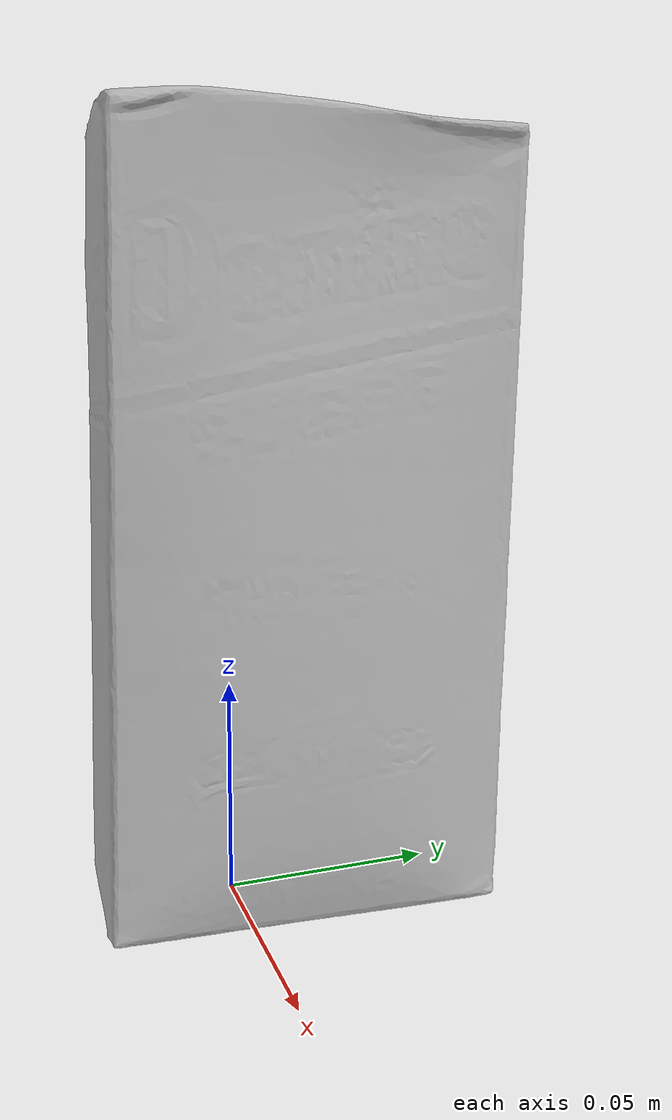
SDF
<?xml version="1.0"?>
<sdf version="1.6">
  <model name="sugar_box">
    <link name="link">
      <inertial>
        <mass>0.514</mass>
      </inertial>
      <collision name="collision">
        <pose>0 0 0.0875 0 0 0</pose>
        <geometry>
          <box>
            <size>0.038 0.089 0.175</size>
          </box>
        </geometry>
      </collision>
      <visual name="visual">
        <pose>0 0.015 0 0 0.05 0</pose>
        <geometry>
          <mesh>
            <uri>model://sugar_box/meshes/textured.dae</uri>
          </mesh>
        </geometry>
      </visual>
    </link>
  </model>
</sdf>
